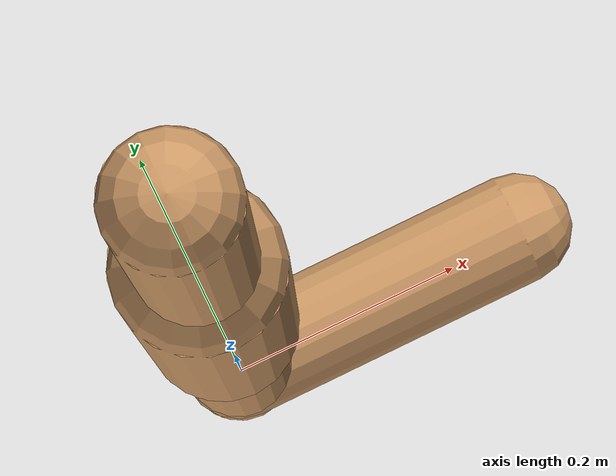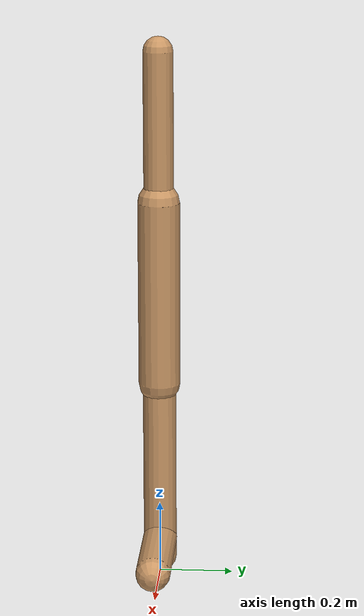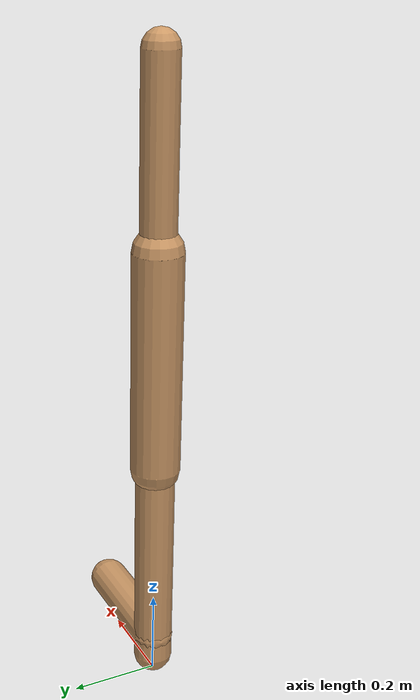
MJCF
<mujoco model="walker2d">
  <compiler angle="degree" coordinate="global" inertiafromgeom="true" />
  <default>
    <joint armature="0.01" damping=".1" limited="true" />
    <geom conaffinity="0" condim="3" contype="1" density="1000" friction="0.8 .1 .1" rgba="0.8 0.6 .4 1" />
  </default>
  <option integrator="RK4" timestep="0.002" />
  <worldbody>

    <body name="torso" pos="0 0 0.10518573776417287">
      <joint armature="0" axis="1 0 0" damping="0" limited="false" name="ignorex" pos="0 0 0" stiffness="0" type="slide" />
      <joint armature="0" axis="0 0 1" damping="0" limited="false" name="ignorez" pos="0 0 0" ref="1.25" stiffness="0" type="slide" />
      <joint armature="0" axis="0 1 0" damping="0" limited="false" name="ignorey" pos="0 0 0" stiffness="0" type="hinge" />
      <geom fromto="0 0 1.45 0 0 1.05" name="torso_geom" size="0.03979451287900146" type="capsule" />
      <body name="thigh">
        <joint axis="0 -1 0" name="thigh_joint" pos="0 0 1.05" range="-150 0" type="hinge" />
        <geom fromto="0.0 0.0 1.05 0.0 0.0 0.5501751768485497" name="thigh_geom" size="0.05621268964424891" type="capsule" />
        <body name="leg" pos="0.0 0.0 -0.049824823151450315">
          <joint axis="0 -1 0" name="leg_joint" pos="0 0 0.6" range="-150 0" type="hinge" />
          <geom fromto="0.0 0.0 0.6 0.0 0.0 0.04463908538727745" name="leg_geom" size="0.04497015171539912" type="capsule" />
          <body name="foot" pos="0.0 0.0 -0.05536091461272256">
            <joint axis="0 -1 0" name="foot_joint" pos="0 0 0.1" range="-45 45" type="hinge" />
            <geom fromto="-0.0 0.0 0.09999999999999998 0.25678982333897266 0.0 0.09999999999999998" name="foot_geom" size="0.046436288260301356" type="capsule" />
          </body>
        </body>
      </body>

      <body name="thigh_left">
        <joint axis="0 -1 0" name="thigh_left_joint" pos="0 0 1.05" range="-150 0" type="hinge" />
        <geom fromto="0.0 0.0 1.05 0.0 0.0 0.5501751768485497" name="thigh_left_geom" rgba=".7 .3 .6 1" size="0.05621268964424891" type="capsule" />
        <body name="leg_left" pos="0.0 0.0 -0.049824823151450315">
          <joint axis="0 -1 0" name="leg_left_joint" pos="0 0 0.6" range="-150 0" type="hinge" />
          <geom fromto="0.0 0.0 0.6 0.0 0.0 0.04463908538727745" name="leg_left_geom" rgba=".7 .3 .6 1" size="0.04497015171539912" type="capsule" />
          <body name="foot_left" pos="0.0 0.0 -0.05536091461272256">
            <joint axis="0 -1 0" name="foot_left_joint" pos="0 0 0.1" range="-45 45" type="hinge" />
            <geom fromto="-0.0 0.0 0.09999999999999998 0.25678982333897266 0.0 0.09999999999999998" name="foot_left_geom" rgba=".7 .3 .6 1" size="0.046436288260301356" type="capsule" />
          </body>
        </body>
      </body>
    </body>
  </worldbody>
  <actuator>

    <motor ctrllimited="true" ctrlrange="-1.0 1.0" gear="100" joint="thigh_joint" />
    <motor ctrllimited="true" ctrlrange="-1.0 1.0" gear="100" joint="leg_joint" />
    <motor ctrllimited="true" ctrlrange="-1.0 1.0" gear="100" joint="foot_joint" />
    <motor ctrllimited="true" ctrlrange="-1.0 1.0" gear="100" joint="thigh_left_joint" />
    <motor ctrllimited="true" ctrlrange="-1.0 1.0" gear="100" joint="leg_left_joint" />
    <motor ctrllimited="true" ctrlrange="-1.0 1.0" gear="100" joint="foot_left_joint" />

  </actuator>
</mujoco>
